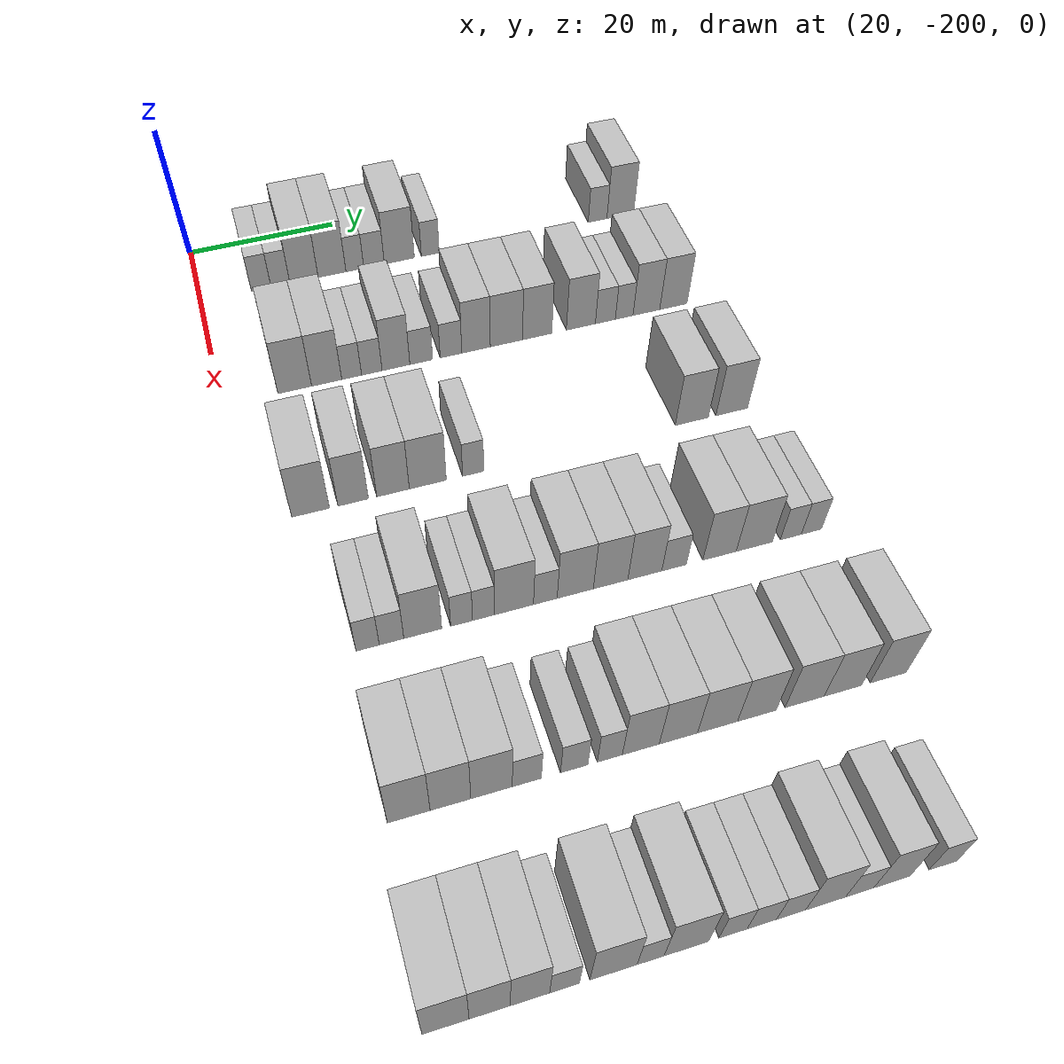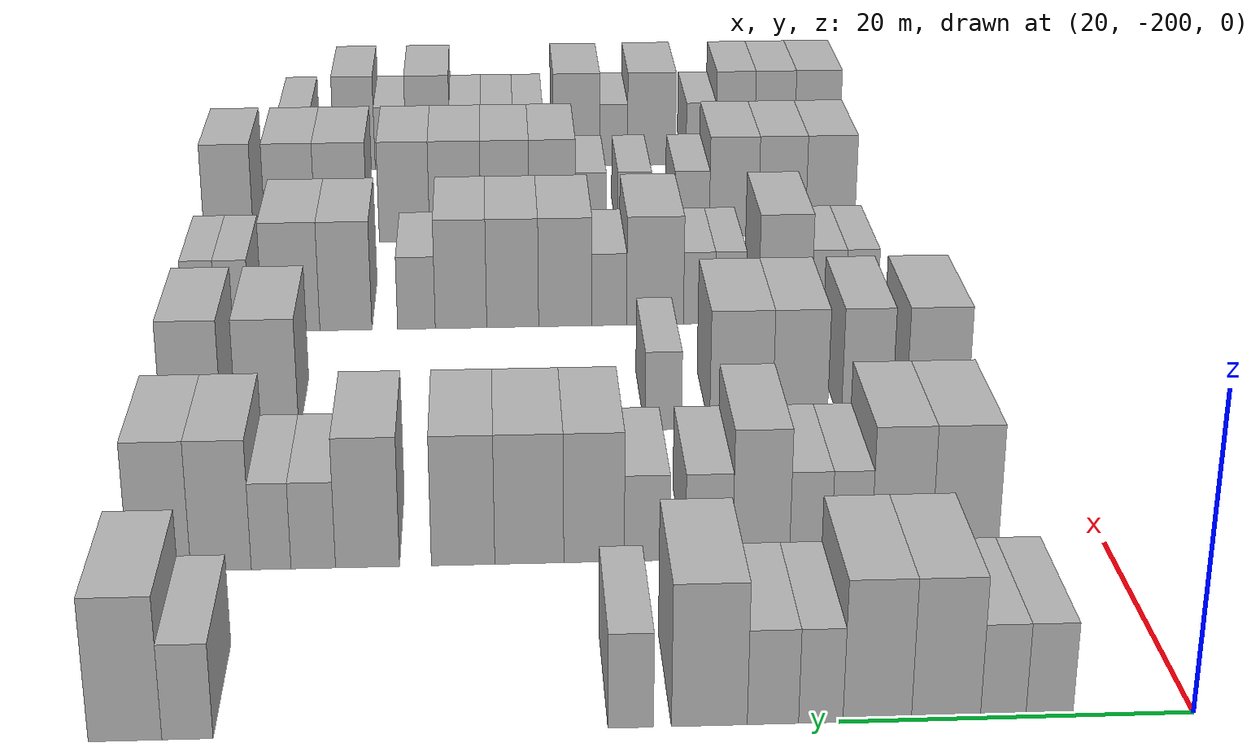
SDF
<sdf version="1.6">
 <world name="default">
  <model name="building_37">
   <static>1</static>
   <pose>25.0000 -191.7918 0 0.000000 0.000000 0.000000</pose>
   <link name="link">
    <pose>0 0 3.00 0 0 0</pose>
    <collision name="collision"><geometry><box><size>10.0000 2.6568 6.0000</size></box></geometry></collision>
    <visual name="visual">
     <cast_shadows>0</cast_shadows>
     <geometry><box><size>10.0000 2.6568 6.0000</size></box></geometry>
     <material>
      <script>
       <uri>model://HANNAS_wall/materials/scripts</uri>
       <uri>model://HANNAS_wall/materials/textures</uri>
       <name>vrc/HANNAS_wall</name>
      </script>
     </material>
    </visual>
   </link>
  </model>
  <model name="building_38">
   <static>1</static>
   <pose>25.0000 -189.1809 0 0.000000 0.000000 0.000000</pose>
   <link name="link">
    <pose>0 0 3.00 0 0 0</pose>
    <collision name="collision"><geometry><box><size>10.0000 2.5649 6.0000</size></box></geometry></collision>
    <visual name="visual">
     <cast_shadows>0</cast_shadows>
     <geometry><box><size>10.0000 2.5649 6.0000</size></box></geometry>
     <material>
      <script>
       <uri>model://HANNAS_wall/materials/scripts</uri>
       <uri>model://HANNAS_wall/materials/textures</uri>
       <name>vrc/HANNAS_wall</name>
      </script>
     </material>
    </visual>
   </link>
  </model>
  <model name="building_39">
   <static>1</static>
   <pose>25.0000 -185.9556 0 0.000000 0.000000 0.000000</pose>
   <link name="link">
    <pose>0 0 4.50 0 0 0</pose>
    <collision name="collision"><geometry><box><size>10.0000 3.8858 9.0000</size></box></geometry></collision>
    <visual name="visual">
     <cast_shadows>0</cast_shadows>
     <geometry><box><size>10.0000 3.8858 9.0000</size></box></geometry>
     <material>
      <script>
       <uri>model://HANNAS_wall/materials/scripts</uri>
       <uri>model://HANNAS_wall/materials/textures</uri>
       <name>vrc/HANNAS_wall</name>
      </script>
     </material>
    </visual>
   </link>
  </model>
  <model name="building_40">
   <static>1</static>
   <pose>25.0000 -182.0902 0 0.000000 0.000000 0.000000</pose>
   <link name="link">
    <pose>0 0 4.50 0 0 0</pose>
    <collision name="collision"><geometry><box><size>10.0000 3.8450 9.0000</size></box></geometry></collision>
    <visual name="visual">
     <cast_shadows>0</cast_shadows>
     <geometry><box><size>10.0000 3.8450 9.0000</size></box></geometry>
     <material>
      <script>
       <uri>model://HANNAS_wall/materials/scripts</uri>
       <uri>model://HANNAS_wall/materials/textures</uri>
       <name>vrc/HANNAS_wall</name>
      </script>
     </material>
    </visual>
   </link>
  </model>
  <model name="building_41">
   <static>1</static>
   <pose>25.0000 -178.9255 0 0.000000 0.000000 0.000000</pose>
   <link name="link">
    <pose>0 0 3.00 0 0 0</pose>
    <collision name="collision"><geometry><box><size>10.0000 2.4843 6.0000</size></box></geometry></collision>
    <visual name="visual">
     <cast_shadows>0</cast_shadows>
     <geometry><box><size>10.0000 2.4843 6.0000</size></box></geometry>
     <material>
      <script>
       <uri>model://HANNAS_wall/materials/scripts</uri>
       <uri>model://HANNAS_wall/materials/textures</uri>
       <name>vrc/HANNAS_wall</name>
      </script>
     </material>
    </visual>
   </link>
  </model>
  <model name="building_42">
   <static>1</static>
   <pose>25.0000 -176.2475 0 0.000000 0.000000 0.000000</pose>
   <link name="link">
    <pose>0 0 3.00 0 0 0</pose>
    <collision name="collision"><geometry><box><size>10.0000 2.8718 6.0000</size></box></geometry></collision>
    <visual name="visual">
     <cast_shadows>0</cast_shadows>
     <geometry><box><size>10.0000 2.8718 6.0000</size></box></geometry>
     <material>
      <script>
       <uri>model://HANNAS_wall/materials/scripts</uri>
       <uri>model://HANNAS_wall/materials/textures</uri>
       <name>vrc/HANNAS_wall</name>
      </script>
     </material>
    </visual>
   </link>
  </model>
  <model name="building_43">
   <static>1</static>
   <pose>25.0000 -172.6956 0 0.000000 0.000000 0.000000</pose>
   <link name="link">
    <pose>0 0 4.50 0 0 0</pose>
    <collision name="collision"><geometry><box><size>10.0000 4.2321 9.0000</size></box></geometry></collision>
    <visual name="visual">
     <cast_shadows>0</cast_shadows>
     <geometry><box><size>10.0000 4.2321 9.0000</size></box></geometry>
     <material>
      <script>
       <uri>model://HANNAS_wall/materials/scripts</uri>
       <uri>model://HANNAS_wall/materials/textures</uri>
       <name>vrc/HANNAS_wall</name>
      </script>
     </material>
    </visual>
   </link>
  </model>
  <model name="building_44">
   <static>1</static>
   <pose>25.0000 -168.3119 0 0.000000 0.000000 0.000000</pose>
   <link name="link">
    <pose>0 0 3.00 0 0 0</pose>
    <collision name="collision"><geometry><box><size>10.0000 2.5352 6.0000</size></box></geometry></collision>
    <visual name="visual">
     <cast_shadows>0</cast_shadows>
     <geometry><box><size>10.0000 2.5352 6.0000</size></box></geometry>
     <material>
      <script>
       <uri>model://HANNAS_wall/materials/scripts</uri>
       <uri>model://HANNAS_wall/materials/textures</uri>
       <name>vrc/HANNAS_wall</name>
      </script>
     </material>
    </visual>
   </link>
  </model>
  <model name="building_45">
   <static>1</static>
   <pose>25.0000 -143.8409 0 0.000000 0.000000 0.000000</pose>
   <link name="link">
    <pose>0 0 3.00 0 0 0</pose>
    <collision name="collision"><geometry><box><size>10.0000 2.8023 6.0000</size></box></geometry></collision>
    <visual name="visual">
     <cast_shadows>0</cast_shadows>
     <geometry><box><size>10.0000 2.8023 6.0000</size></box></geometry>
     <material>
      <script>
       <uri>model://HANNAS_wall/materials/scripts</uri>
       <uri>model://HANNAS_wall/materials/textures</uri>
       <name>vrc/HANNAS_wall</name>
      </script>
     </material>
    </visual>
   </link>
  </model>
  <model name="building_46">
   <static>1</static>
   <pose>25.0000 -140.4243 0 0.000000 0.000000 0.000000</pose>
   <link name="link">
    <pose>0 0 4.50 0 0 0</pose>
    <collision name="collision"><geometry><box><size>10.0000 4.0309 9.0000</size></box></geometry></collision>
    <visual name="visual">
     <cast_shadows>0</cast_shadows>
     <geometry><box><size>10.0000 4.0309 9.0000</size></box></geometry>
     <material>
      <script>
       <uri>model://HANNAS_wall/materials/scripts</uri>
       <uri>model://HANNAS_wall/materials/textures</uri>
       <name>vrc/HANNAS_wall</name>
      </script>
     </material>
    </visual>
   </link>
  </model>
  <model name="building_216">
   <static>1</static>
   <pose>44.0000 -190.7428 0 0.000000 0.000000 0.000000</pose>
   <link name="link">
    <pose>0 0 4.50 0 0 0</pose>
    <collision name="collision"><geometry><box><size>10.0000 4.2582 9.0000</size></box></geometry></collision>
    <visual name="visual">
     <cast_shadows>0</cast_shadows>
     <geometry><box><size>10.0000 4.2582 9.0000</size></box></geometry>
     <material>
      <script>
       <uri>model://HANNAS_wall/materials/scripts</uri>
       <uri>model://HANNAS_wall/materials/textures</uri>
       <name>vrc/HANNAS_wall</name>
      </script>
     </material>
    </visual>
   </link>
  </model>
  <model name="building_217">
   <static>1</static>
   <pose>44.0000 -186.6824 0 0.000000 0.000000 0.000000</pose>
   <link name="link">
    <pose>0 0 4.50 0 0 0</pose>
    <collision name="collision"><geometry><box><size>10.0000 3.8625 9.0000</size></box></geometry></collision>
    <visual name="visual">
     <cast_shadows>0</cast_shadows>
     <geometry><box><size>10.0000 3.8625 9.0000</size></box></geometry>
     <material>
      <script>
       <uri>model://HANNAS_wall/materials/scripts</uri>
       <uri>model://HANNAS_wall/materials/textures</uri>
       <name>vrc/HANNAS_wall</name>
      </script>
     </material>
    </visual>
   </link>
  </model>
  <model name="building_218">
   <static>1</static>
   <pose>44.0000 -183.4792 0 0.000000 0.000000 0.000000</pose>
   <link name="link">
    <pose>0 0 3.00 0 0 0</pose>
    <collision name="collision"><geometry><box><size>10.0000 2.5438 6.0000</size></box></geometry></collision>
    <visual name="visual">
     <cast_shadows>0</cast_shadows>
     <geometry><box><size>10.0000 2.5438 6.0000</size></box></geometry>
     <material>
      <script>
       <uri>model://HANNAS_wall/materials/scripts</uri>
       <uri>model://HANNAS_wall/materials/textures</uri>
       <name>vrc/HANNAS_wall</name>
      </script>
     </material>
    </visual>
   </link>
  </model>
  <model name="building_219">
   <static>1</static>
   <pose>44.0000 -180.8809 0 0.000000 0.000000 0.000000</pose>
   <link name="link">
    <pose>0 0 3.00 0 0 0</pose>
    <collision name="collision"><geometry><box><size>10.0000 2.6528 6.0000</size></box></geometry></collision>
    <visual name="visual">
     <cast_shadows>0</cast_shadows>
     <geometry><box><size>10.0000 2.6528 6.0000</size></box></geometry>
     <material>
      <script>
       <uri>model://HANNAS_wall/materials/scripts</uri>
       <uri>model://HANNAS_wall/materials/textures</uri>
       <name>vrc/HANNAS_wall</name>
      </script>
     </material>
    </visual>
   </link>
  </model>
  <model name="building_220">
   <static>1</static>
   <pose>44.0000 -177.7404 0 0.000000 0.000000 0.000000</pose>
   <link name="link">
    <pose>0 0 4.50 0 0 0</pose>
    <collision name="collision"><geometry><box><size>10.0000 3.6284 9.0000</size></box></geometry></collision>
    <visual name="visual">
     <cast_shadows>0</cast_shadows>
     <geometry><box><size>10.0000 3.6284 9.0000</size></box></geometry>
     <material>
      <script>
       <uri>model://HANNAS_wall/materials/scripts</uri>
       <uri>model://HANNAS_wall/materials/textures</uri>
       <name>vrc/HANNAS_wall</name>
      </script>
     </material>
    </visual>
   </link>
  </model>
  <model name="building_221">
   <static>1</static>
   <pose>44.0000 -174.4324 0 0.000000 0.000000 0.000000</pose>
   <link name="link">
    <pose>0 0 3.00 0 0 0</pose>
    <collision name="collision"><geometry><box><size>10.0000 2.9875 6.0000</size></box></geometry></collision>
    <visual name="visual">
     <cast_shadows>0</cast_shadows>
     <geometry><box><size>10.0000 2.9875 6.0000</size></box></geometry>
     <material>
      <script>
       <uri>model://HANNAS_wall/materials/scripts</uri>
       <uri>model://HANNAS_wall/materials/textures</uri>
       <name>vrc/HANNAS_wall</name>
      </script>
     </material>
    </visual>
   </link>
  </model>
  <model name="building_222">
   <static>1</static>
   <pose>44.0000 -170.5070 0 0.000000 0.000000 0.000000</pose>
   <link name="link">
    <pose>0 0 3.00 0 0 0</pose>
    <collision name="collision"><geometry><box><size>10.0000 2.8634 6.0000</size></box></geometry></collision>
    <visual name="visual">
     <cast_shadows>0</cast_shadows>
     <geometry><box><size>10.0000 2.8634 6.0000</size></box></geometry>
     <material>
      <script>
       <uri>model://HANNAS_wall/materials/scripts</uri>
       <uri>model://HANNAS_wall/materials/textures</uri>
       <name>vrc/HANNAS_wall</name>
      </script>
     </material>
    </visual>
   </link>
  </model>
  <model name="building_223">
   <static>1</static>
   <pose>44.0000 -167.1640 0 0.000000 0.000000 0.000000</pose>
   <link name="link">
    <pose>0 0 4.50 0 0 0</pose>
    <collision name="collision"><geometry><box><size>10.0000 3.8225 9.0000</size></box></geometry></collision>
    <visual name="visual">
     <cast_shadows>0</cast_shadows>
     <geometry><box><size>10.0000 3.8225 9.0000</size></box></geometry>
     <material>
      <script>
       <uri>model://HANNAS_wall/materials/scripts</uri>
       <uri>model://HANNAS_wall/materials/textures</uri>
       <name>vrc/HANNAS_wall</name>
      </script>
     </material>
    </visual>
   </link>
  </model>
  <model name="building_224">
   <static>1</static>
   <pose>44.0000 -163.0787 0 0.000000 0.000000 0.000000</pose>
   <link name="link">
    <pose>0 0 4.50 0 0 0</pose>
    <collision name="collision"><geometry><box><size>10.0000 4.3482 9.0000</size></box></geometry></collision>
    <visual name="visual">
     <cast_shadows>0</cast_shadows>
     <geometry><box><size>10.0000 4.3482 9.0000</size></box></geometry>
     <material>
      <script>
       <uri>model://HANNAS_wall/materials/scripts</uri>
       <uri>model://HANNAS_wall/materials/textures</uri>
       <name>vrc/HANNAS_wall</name>
      </script>
     </material>
    </visual>
   </link>
  </model>
  <model name="building_225">
   <static>1</static>
   <pose>44.0000 -158.9117 0 0.000000 0.000000 0.000000</pose>
   <link name="link">
    <pose>0 0 4.50 0 0 0</pose>
    <collision name="collision"><geometry><box><size>10.0000 3.9858 9.0000</size></box></geometry></collision>
    <visual name="visual">
     <cast_shadows>0</cast_shadows>
     <geometry><box><size>10.0000 3.9858 9.0000</size></box></geometry>
     <material>
      <script>
       <uri>model://HANNAS_wall/materials/scripts</uri>
       <uri>model://HANNAS_wall/materials/textures</uri>
       <name>vrc/HANNAS_wall</name>
      </script>
     </material>
    </visual>
   </link>
  </model>
  <model name="building_226">
   <static>1</static>
   <pose>44.0000 -152.9117 0 0.000000 0.000000 0.000000</pose>
   <link name="link">
    <pose>0 0 4.50 0 0 0</pose>
    <collision name="collision"><geometry><box><size>10.0000 4.0142 9.0000</size></box></geometry></collision>
    <visual name="visual">
     <cast_shadows>0</cast_shadows>
     <geometry><box><size>10.0000 4.0142 9.0000</size></box></geometry>
     <material>
      <script>
       <uri>model://HANNAS_wall/materials/scripts</uri>
       <uri>model://HANNAS_wall/materials/textures</uri>
       <name>vrc/HANNAS_wall</name>
      </script>
     </material>
    </visual>
   </link>
  </model>
  <model name="building_227">
   <static>1</static>
   <pose>44.0000 -149.5136 0 0.000000 0.000000 0.000000</pose>
   <link name="link">
    <pose>0 0 3.00 0 0 0</pose>
    <collision name="collision"><geometry><box><size>10.0000 2.7820 6.0000</size></box></geometry></collision>
    <visual name="visual">
     <cast_shadows>0</cast_shadows>
     <geometry><box><size>10.0000 2.7820 6.0000</size></box></geometry>
     <material>
      <script>
       <uri>model://HANNAS_wall/materials/scripts</uri>
       <uri>model://HANNAS_wall/materials/textures</uri>
       <name>vrc/HANNAS_wall</name>
      </script>
     </material>
    </visual>
   </link>
  </model>
  <model name="building_228">
   <static>1</static>
   <pose>44.0000 -146.8831 0 0.000000 0.000000 0.000000</pose>
   <link name="link">
    <pose>0 0 3.00 0 0 0</pose>
    <collision name="collision"><geometry><box><size>10.0000 2.4791 6.0000</size></box></geometry></collision>
    <visual name="visual">
     <cast_shadows>0</cast_shadows>
     <geometry><box><size>10.0000 2.4791 6.0000</size></box></geometry>
     <material>
      <script>
       <uri>model://HANNAS_wall/materials/scripts</uri>
       <uri>model://HANNAS_wall/materials/textures</uri>
       <name>vrc/HANNAS_wall</name>
      </script>
     </material>
    </visual>
   </link>
  </model>
  <model name="building_229">
   <static>1</static>
   <pose>44.0000 -143.7566 0 0.000000 0.000000 0.000000</pose>
   <link name="link">
    <pose>0 0 4.50 0 0 0</pose>
    <collision name="collision"><geometry><box><size>10.0000 3.7738 9.0000</size></box></geometry></collision>
    <visual name="visual">
     <cast_shadows>0</cast_shadows>
     <geometry><box><size>10.0000 3.7738 9.0000</size></box></geometry>
     <material>
      <script>
       <uri>model://HANNAS_wall/materials/scripts</uri>
       <uri>model://HANNAS_wall/materials/textures</uri>
       <name>vrc/HANNAS_wall</name>
      </script>
     </material>
    </visual>
   </link>
  </model>
  <model name="building_230">
   <static>1</static>
   <pose>44.0000 -139.9314 0 0.000000 0.000000 0.000000</pose>
   <link name="link">
    <pose>0 0 4.50 0 0 0</pose>
    <collision name="collision"><geometry><box><size>10.0000 3.8767 9.0000</size></box></geometry></collision>
    <visual name="visual">
     <cast_shadows>0</cast_shadows>
     <geometry><box><size>10.0000 3.8767 9.0000</size></box></geometry>
     <material>
      <script>
       <uri>model://HANNAS_wall/materials/scripts</uri>
       <uri>model://HANNAS_wall/materials/textures</uri>
       <name>vrc/HANNAS_wall</name>
      </script>
     </material>
    </visual>
   </link>
  </model>
  <model name="building_384">
   <static>1</static>
   <pose>63.0000 -192.4238 0 0.000000 0.000000 0.000000</pose>
   <link name="link">
    <pose>0 0 4.50 0 0 0</pose>
    <collision name="collision"><geometry><box><size>10.0000 4.4139 9.0000</size></box></geometry></collision>
    <visual name="visual">
     <cast_shadows>0</cast_shadows>
     <geometry><box><size>10.0000 4.4139 9.0000</size></box></geometry>
     <material>
      <script>
       <uri>model://HANNAS_wall/materials/scripts</uri>
       <uri>model://HANNAS_wall/materials/textures</uri>
       <name>vrc/HANNAS_wall</name>
      </script>
     </material>
    </visual>
   </link>
  </model>
  <model name="building_385">
   <static>1</static>
   <pose>63.0000 -187.4139 0 0.000000 0.000000 0.000000</pose>
   <link name="link">
    <pose>0 0 4.50 0 0 0</pose>
    <collision name="collision"><geometry><box><size>10.0000 3.6058 9.0000</size></box></geometry></collision>
    <visual name="visual">
     <cast_shadows>0</cast_shadows>
     <geometry><box><size>10.0000 3.6058 9.0000</size></box></geometry>
     <material>
      <script>
       <uri>model://HANNAS_wall/materials/scripts</uri>
       <uri>model://HANNAS_wall/materials/textures</uri>
       <name>vrc/HANNAS_wall</name>
      </script>
     </material>
    </visual>
   </link>
  </model>
  <model name="building_386">
   <static>1</static>
   <pose>63.0000 -182.6607 0 0.000000 0.000000 0.000000</pose>
   <link name="link">
    <pose>0 0 4.50 0 0 0</pose>
    <collision name="collision"><geometry><box><size>10.0000 3.9006 9.0000</size></box></geometry></collision>
    <visual name="visual">
     <cast_shadows>0</cast_shadows>
     <geometry><box><size>10.0000 3.9006 9.0000</size></box></geometry>
     <material>
      <script>
       <uri>model://HANNAS_wall/materials/scripts</uri>
       <uri>model://HANNAS_wall/materials/textures</uri>
       <name>vrc/HANNAS_wall</name>
      </script>
     </material>
    </visual>
   </link>
  </model>
  <model name="building_387">
   <static>1</static>
   <pose>63.0000 -178.4774 0 0.000000 0.000000 0.000000</pose>
   <link name="link">
    <pose>0 0 4.50 0 0 0</pose>
    <collision name="collision"><geometry><box><size>10.0000 4.4661 9.0000</size></box></geometry></collision>
    <visual name="visual">
     <cast_shadows>0</cast_shadows>
     <geometry><box><size>10.0000 4.4661 9.0000</size></box></geometry>
     <material>
      <script>
       <uri>model://HANNAS_wall/materials/scripts</uri>
       <uri>model://HANNAS_wall/materials/textures</uri>
       <name>vrc/HANNAS_wall</name>
      </script>
     </material>
    </visual>
   </link>
  </model>
  <model name="building_388">
   <static>1</static>
   <pose>63.0000 -172.9500 0 0.000000 0.000000 0.000000</pose>
   <link name="link">
    <pose>0 0 3.00 0 0 0</pose>
    <collision name="collision"><geometry><box><size>10.0000 2.5886 6.0000</size></box></geometry></collision>
    <visual name="visual">
     <cast_shadows>0</cast_shadows>
     <geometry><box><size>10.0000 2.5886 6.0000</size></box></geometry>
     <material>
      <script>
       <uri>model://HANNAS_wall/materials/scripts</uri>
       <uri>model://HANNAS_wall/materials/textures</uri>
       <name>vrc/HANNAS_wall</name>
      </script>
     </material>
    </visual>
   </link>
  </model>
  <model name="building_389">
   <static>1</static>
   <pose>63.0000 -145.1122 0 0.000000 0.000000 0.000000</pose>
   <link name="link">
    <pose>0 0 4.50 0 0 0</pose>
    <collision name="collision"><geometry><box><size>10.0000 4.3623 9.0000</size></box></geometry></collision>
    <visual name="visual">
     <cast_shadows>0</cast_shadows>
     <geometry><box><size>10.0000 4.3623 9.0000</size></box></geometry>
     <material>
      <script>
       <uri>model://HANNAS_wall/materials/scripts</uri>
       <uri>model://HANNAS_wall/materials/textures</uri>
       <name>vrc/HANNAS_wall</name>
      </script>
     </material>
    </visual>
   </link>
  </model>
  <model name="building_390">
   <static>1</static>
   <pose>63.0000 -139.8253 0 0.000000 0.000000 0.000000</pose>
   <link name="link">
    <pose>0 0 4.50 0 0 0</pose>
    <collision name="collision"><geometry><box><size>10.0000 4.2114 9.0000</size></box></geometry></collision>
    <visual name="visual">
     <cast_shadows>0</cast_shadows>
     <geometry><box><size>10.0000 4.2114 9.0000</size></box></geometry>
     <material>
      <script>
       <uri>model://HANNAS_wall/materials/scripts</uri>
       <uri>model://HANNAS_wall/materials/textures</uri>
       <name>vrc/HANNAS_wall</name>
      </script>
     </material>
    </visual>
   </link>
  </model>
  <model name="building_564">
   <static>1</static>
   <pose>82.0000 -189.9778 0 0.000000 0.000000 0.000000</pose>
   <link name="link">
    <pose>0 0 3.00 0 0 0</pose>
    <collision name="collision"><geometry><box><size>10.0000 2.5356 6.0000</size></box></geometry></collision>
    <visual name="visual">
     <cast_shadows>0</cast_shadows>
     <geometry><box><size>10.0000 2.5356 6.0000</size></box></geometry>
     <material>
      <script>
       <uri>model://HANNAS_wall/materials/scripts</uri>
       <uri>model://HANNAS_wall/materials/textures</uri>
       <name>vrc/HANNAS_wall</name>
      </script>
     </material>
    </visual>
   </link>
  </model>
  <model name="building_565">
   <static>1</static>
   <pose>82.0000 -187.3683 0 0.000000 0.000000 0.000000</pose>
   <link name="link">
    <pose>0 0 3.00 0 0 0</pose>
    <collision name="collision"><geometry><box><size>10.0000 2.6834 6.0000</size></box></geometry></collision>
    <visual name="visual">
     <cast_shadows>0</cast_shadows>
     <geometry><box><size>10.0000 2.6834 6.0000</size></box></geometry>
     <material>
      <script>
       <uri>model://HANNAS_wall/materials/scripts</uri>
       <uri>model://HANNAS_wall/materials/textures</uri>
       <name>vrc/HANNAS_wall</name>
      </script>
     </material>
    </visual>
   </link>
  </model>
  <model name="building_566">
   <static>1</static>
   <pose>82.0000 -183.9400 0 0.000000 0.000000 0.000000</pose>
   <link name="link">
    <pose>0 0 4.50 0 0 0</pose>
    <collision name="collision"><geometry><box><size>10.0000 4.1731 9.0000</size></box></geometry></collision>
    <visual name="visual">
     <cast_shadows>0</cast_shadows>
     <geometry><box><size>10.0000 4.1731 9.0000</size></box></geometry>
     <material>
      <script>
       <uri>model://HANNAS_wall/materials/scripts</uri>
       <uri>model://HANNAS_wall/materials/textures</uri>
       <name>vrc/HANNAS_wall</name>
      </script>
     </material>
    </visual>
   </link>
  </model>
  <model name="building_567">
   <static>1</static>
   <pose>82.0000 -179.6330 0 0.000000 0.000000 0.000000</pose>
   <link name="link">
    <pose>0 0 3.00 0 0 0</pose>
    <collision name="collision"><geometry><box><size>10.0000 2.4410 6.0000</size></box></geometry></collision>
    <visual name="visual">
     <cast_shadows>0</cast_shadows>
     <geometry><box><size>10.0000 2.4410 6.0000</size></box></geometry>
     <material>
      <script>
       <uri>model://HANNAS_wall/materials/scripts</uri>
       <uri>model://HANNAS_wall/materials/textures</uri>
       <name>vrc/HANNAS_wall</name>
      </script>
     </material>
    </visual>
   </link>
  </model>
  <model name="building_568">
   <static>1</static>
   <pose>82.0000 -177.1831 0 0.000000 0.000000 0.000000</pose>
   <link name="link">
    <pose>0 0 3.00 0 0 0</pose>
    <collision name="collision"><geometry><box><size>10.0000 2.4589 6.0000</size></box></geometry></collision>
    <visual name="visual">
     <cast_shadows>0</cast_shadows>
     <geometry><box><size>10.0000 2.4589 6.0000</size></box></geometry>
     <material>
      <script>
       <uri>model://HANNAS_wall/materials/scripts</uri>
       <uri>model://HANNAS_wall/materials/textures</uri>
       <name>vrc/HANNAS_wall</name>
      </script>
     </material>
    </visual>
   </link>
  </model>
  <model name="building_569">
   <static>1</static>
   <pose>82.0000 -173.7301 0 0.000000 0.000000 0.000000</pose>
   <link name="link">
    <pose>0 0 4.50 0 0 0</pose>
    <collision name="collision"><geometry><box><size>10.0000 4.4470 9.0000</size></box></geometry></collision>
    <visual name="visual">
     <cast_shadows>0</cast_shadows>
     <geometry><box><size>10.0000 4.4470 9.0000</size></box></geometry>
     <material>
      <script>
       <uri>model://HANNAS_wall/materials/scripts</uri>
       <uri>model://HANNAS_wall/materials/textures</uri>
       <name>vrc/HANNAS_wall</name>
      </script>
     </material>
    </visual>
   </link>
  </model>
  <model name="building_570">
   <static>1</static>
   <pose>82.0000 -170.1502 0 0.000000 0.000000 0.000000</pose>
   <link name="link">
    <pose>0 0 3.00 0 0 0</pose>
    <collision name="collision"><geometry><box><size>10.0000 2.7130 6.0000</size></box></geometry></collision>
    <visual name="visual">
     <cast_shadows>0</cast_shadows>
     <geometry><box><size>10.0000 2.7130 6.0000</size></box></geometry>
     <material>
      <script>
       <uri>model://HANNAS_wall/materials/scripts</uri>
       <uri>model://HANNAS_wall/materials/textures</uri>
       <name>vrc/HANNAS_wall</name>
      </script>
     </material>
    </visual>
   </link>
  </model>
  <model name="building_571">
   <static>1</static>
   <pose>82.0000 -166.6986 0 0.000000 0.000000 0.000000</pose>
   <link name="link">
    <pose>0 0 4.50 0 0 0</pose>
    <collision name="collision"><geometry><box><size>10.0000 4.1902 9.0000</size></box></geometry></collision>
    <visual name="visual">
     <cast_shadows>0</cast_shadows>
     <geometry><box><size>10.0000 4.1902 9.0000</size></box></geometry>
     <material>
      <script>
       <uri>model://HANNAS_wall/materials/scripts</uri>
       <uri>model://HANNAS_wall/materials/textures</uri>
       <name>vrc/HANNAS_wall</name>
      </script>
     </material>
    </visual>
   </link>
  </model>
  <model name="building_572">
   <static>1</static>
   <pose>82.0000 -162.5779 0 0.000000 0.000000 0.000000</pose>
   <link name="link">
    <pose>0 0 4.50 0 0 0</pose>
    <collision name="collision"><geometry><box><size>10.0000 4.0511 9.0000</size></box></geometry></collision>
    <visual name="visual">
     <cast_shadows>0</cast_shadows>
     <geometry><box><size>10.0000 4.0511 9.0000</size></box></geometry>
     <material>
      <script>
       <uri>model://HANNAS_wall/materials/scripts</uri>
       <uri>model://HANNAS_wall/materials/textures</uri>
       <name>vrc/HANNAS_wall</name>
      </script>
     </material>
    </visual>
   </link>
  </model>
  <model name="building_573">
   <static>1</static>
   <pose>82.0000 -158.5436 0 0.000000 0.000000 0.000000</pose>
   <link name="link">
    <pose>0 0 4.50 0 0 0</pose>
    <collision name="collision"><geometry><box><size>10.0000 4.0175 9.0000</size></box></geometry></collision>
    <visual name="visual">
     <cast_shadows>0</cast_shadows>
     <geometry><box><size>10.0000 4.0175 9.0000</size></box></geometry>
     <material>
      <script>
       <uri>model://HANNAS_wall/materials/scripts</uri>
       <uri>model://HANNAS_wall/materials/textures</uri>
       <name>vrc/HANNAS_wall</name>
      </script>
     </material>
    </visual>
   </link>
  </model>
  <model name="building_574">
   <static>1</static>
   <pose>82.0000 -155.0708 0 0.000000 0.000000 0.000000</pose>
   <link name="link">
    <pose>0 0 3.00 0 0 0</pose>
    <collision name="collision"><geometry><box><size>10.0000 2.9281 6.0000</size></box></geometry></collision>
    <visual name="visual">
     <cast_shadows>0</cast_shadows>
     <geometry><box><size>10.0000 2.9281 6.0000</size></box></geometry>
     <material>
      <script>
       <uri>model://HANNAS_wall/materials/scripts</uri>
       <uri>model://HANNAS_wall/materials/textures</uri>
       <name>vrc/HANNAS_wall</name>
      </script>
     </material>
    </visual>
   </link>
  </model>
  <model name="building_575">
   <static>1</static>
   <pose>82.0000 -149.5867 0 0.000000 0.000000 0.000000</pose>
   <link name="link">
    <pose>0 0 4.50 0 0 0</pose>
    <collision name="collision"><geometry><box><size>10.0000 4.0401 9.0000</size></box></geometry></collision>
    <visual name="visual">
     <cast_shadows>0</cast_shadows>
     <geometry><box><size>10.0000 4.0401 9.0000</size></box></geometry>
     <material>
      <script>
       <uri>model://HANNAS_wall/materials/scripts</uri>
       <uri>model://HANNAS_wall/materials/textures</uri>
       <name>vrc/HANNAS_wall</name>
      </script>
     </material>
    </visual>
   </link>
  </model>
  <model name="building_576">
   <static>1</static>
   <pose>82.0000 -145.3504 0 0.000000 0.000000 0.000000</pose>
   <link name="link">
    <pose>0 0 4.50 0 0 0</pose>
    <collision name="collision"><geometry><box><size>10.0000 4.4325 9.0000</size></box></geometry></collision>
    <visual name="visual">
     <cast_shadows>0</cast_shadows>
     <geometry><box><size>10.0000 4.4325 9.0000</size></box></geometry>
     <material>
      <script>
       <uri>model://HANNAS_wall/materials/scripts</uri>
       <uri>model://HANNAS_wall/materials/textures</uri>
       <name>vrc/HANNAS_wall</name>
      </script>
     </material>
    </visual>
   </link>
  </model>
  <model name="building_577">
   <static>1</static>
   <pose>82.0000 -140.8302 0 0.000000 0.000000 0.000000</pose>
   <link name="link">
    <pose>0 0 3.00 0 0 0</pose>
    <collision name="collision"><geometry><box><size>10.0000 2.6080 6.0000</size></box></geometry></collision>
    <visual name="visual">
     <cast_shadows>0</cast_shadows>
     <geometry><box><size>10.0000 2.6080 6.0000</size></box></geometry>
     <material>
      <script>
       <uri>model://HANNAS_wall/materials/scripts</uri>
       <uri>model://HANNAS_wall/materials/textures</uri>
       <name>vrc/HANNAS_wall</name>
      </script>
     </material>
    </visual>
   </link>
  </model>
  <model name="building_578">
   <static>1</static>
   <pose>82.0000 -138.2728 0 0.000000 0.000000 0.000000</pose>
   <link name="link">
    <pose>0 0 3.00 0 0 0</pose>
    <collision name="collision"><geometry><box><size>10.0000 2.5067 6.0000</size></box></geometry></collision>
    <visual name="visual">
     <cast_shadows>0</cast_shadows>
     <geometry><box><size>10.0000 2.5067 6.0000</size></box></geometry>
     <material>
      <script>
       <uri>model://HANNAS_wall/materials/scripts</uri>
       <uri>model://HANNAS_wall/materials/textures</uri>
       <name>vrc/HANNAS_wall</name>
      </script>
     </material>
    </visual>
   </link>
  </model>
  <model name="building_734">
   <static>1</static>
   <pose>101.0000 -190.1904 0 0.000000 0.000000 0.000000</pose>
   <link name="link">
    <pose>0 0 4.50 0 0 0</pose>
    <collision name="collision"><geometry><box><size>10.0000 4.2547 9.0000</size></box></geometry></collision>
    <visual name="visual">
     <cast_shadows>0</cast_shadows>
     <geometry><box><size>10.0000 4.2547 9.0000</size></box></geometry>
     <material>
      <script>
       <uri>model://HANNAS_wall/materials/scripts</uri>
       <uri>model://HANNAS_wall/materials/textures</uri>
       <name>vrc/HANNAS_wall</name>
      </script>
     </material>
    </visual>
   </link>
  </model>
  <model name="building_735">
   <static>1</static>
   <pose>101.0000 -186.0163 0 0.000000 0.000000 0.000000</pose>
   <link name="link">
    <pose>0 0 4.50 0 0 0</pose>
    <collision name="collision"><geometry><box><size>10.0000 4.0935 9.0000</size></box></geometry></collision>
    <visual name="visual">
     <cast_shadows>0</cast_shadows>
     <geometry><box><size>10.0000 4.0935 9.0000</size></box></geometry>
     <material>
      <script>
       <uri>model://HANNAS_wall/materials/scripts</uri>
       <uri>model://HANNAS_wall/materials/textures</uri>
       <name>vrc/HANNAS_wall</name>
      </script>
     </material>
    </visual>
   </link>
  </model>
  <model name="building_736">
   <static>1</static>
   <pose>101.0000 -181.8553 0 0.000000 0.000000 0.000000</pose>
   <link name="link">
    <pose>0 0 4.50 0 0 0</pose>
    <collision name="collision"><geometry><box><size>10.0000 4.2285 9.0000</size></box></geometry></collision>
    <visual name="visual">
     <cast_shadows>0</cast_shadows>
     <geometry><box><size>10.0000 4.2285 9.0000</size></box></geometry>
     <material>
      <script>
       <uri>model://HANNAS_wall/materials/scripts</uri>
       <uri>model://HANNAS_wall/materials/textures</uri>
       <name>vrc/HANNAS_wall</name>
      </script>
     </material>
    </visual>
   </link>
  </model>
  <model name="building_737">
   <static>1</static>
   <pose>101.0000 -178.2444 0 0.000000 0.000000 0.000000</pose>
   <link name="link">
    <pose>0 0 3.00 0 0 0</pose>
    <collision name="collision"><geometry><box><size>10.0000 2.9933 6.0000</size></box></geometry></collision>
    <visual name="visual">
     <cast_shadows>0</cast_shadows>
     <geometry><box><size>10.0000 2.9933 6.0000</size></box></geometry>
     <material>
      <script>
       <uri>model://HANNAS_wall/materials/scripts</uri>
       <uri>model://HANNAS_wall/materials/textures</uri>
       <name>vrc/HANNAS_wall</name>
      </script>
     </material>
    </visual>
   </link>
  </model>
  <model name="building_738">
   <static>1</static>
   <pose>101.0000 -173.3160 0 0.000000 0.000000 0.000000</pose>
   <link name="link">
    <pose>0 0 3.00 0 0 0</pose>
    <collision name="collision"><geometry><box><size>10.0000 2.8637 6.0000</size></box></geometry></collision>
    <visual name="visual">
     <cast_shadows>0</cast_shadows>
     <geometry><box><size>10.0000 2.8637 6.0000</size></box></geometry>
     <material>
      <script>
       <uri>model://HANNAS_wall/materials/scripts</uri>
       <uri>model://HANNAS_wall/materials/textures</uri>
       <name>vrc/HANNAS_wall</name>
      </script>
     </material>
    </visual>
   </link>
  </model>
  <model name="building_739">
   <static>1</static>
   <pose>101.0000 -169.5600 0 0.000000 0.000000 0.000000</pose>
   <link name="link">
    <pose>0 0 3.00 0 0 0</pose>
    <collision name="collision"><geometry><box><size>10.0000 2.6482 6.0000</size></box></geometry></collision>
    <visual name="visual">
     <cast_shadows>0</cast_shadows>
     <geometry><box><size>10.0000 2.6482 6.0000</size></box></geometry>
     <material>
      <script>
       <uri>model://HANNAS_wall/materials/scripts</uri>
       <uri>model://HANNAS_wall/materials/textures</uri>
       <name>vrc/HANNAS_wall</name>
      </script>
     </material>
    </visual>
   </link>
  </model>
  <model name="building_740">
   <static>1</static>
   <pose>101.0000 -166.2601 0 0.000000 0.000000 0.000000</pose>
   <link name="link">
    <pose>0 0 4.50 0 0 0</pose>
    <collision name="collision"><geometry><box><size>10.0000 3.9518 9.0000</size></box></geometry></collision>
    <visual name="visual">
     <cast_shadows>0</cast_shadows>
     <geometry><box><size>10.0000 3.9518 9.0000</size></box></geometry>
     <material>
      <script>
       <uri>model://HANNAS_wall/materials/scripts</uri>
       <uri>model://HANNAS_wall/materials/textures</uri>
       <name>vrc/HANNAS_wall</name>
      </script>
     </material>
    </visual>
   </link>
  </model>
  <model name="building_741">
   <static>1</static>
   <pose>101.0000 -162.2164 0 0.000000 0.000000 0.000000</pose>
   <link name="link">
    <pose>0 0 4.50 0 0 0</pose>
    <collision name="collision"><geometry><box><size>10.0000 4.1357 9.0000</size></box></geometry></collision>
    <visual name="visual">
     <cast_shadows>0</cast_shadows>
     <geometry><box><size>10.0000 4.1357 9.0000</size></box></geometry>
     <material>
      <script>
       <uri>model://HANNAS_wall/materials/scripts</uri>
       <uri>model://HANNAS_wall/materials/textures</uri>
       <name>vrc/HANNAS_wall</name>
      </script>
     </material>
    </visual>
   </link>
  </model>
  <model name="building_742">
   <static>1</static>
   <pose>101.0000 -157.9520 0 0.000000 0.000000 0.000000</pose>
   <link name="link">
    <pose>0 0 4.50 0 0 0</pose>
    <collision name="collision"><geometry><box><size>10.0000 4.3931 9.0000</size></box></geometry></collision>
    <visual name="visual">
     <cast_shadows>0</cast_shadows>
     <geometry><box><size>10.0000 4.3931 9.0000</size></box></geometry>
     <material>
      <script>
       <uri>model://HANNAS_wall/materials/scripts</uri>
       <uri>model://HANNAS_wall/materials/textures</uri>
       <name>vrc/HANNAS_wall</name>
      </script>
     </material>
    </visual>
   </link>
  </model>
  <model name="building_743">
   <static>1</static>
   <pose>101.0000 -153.6067 0 0.000000 0.000000 0.000000</pose>
   <link name="link">
    <pose>0 0 4.50 0 0 0</pose>
    <collision name="collision"><geometry><box><size>10.0000 4.2974 9.0000</size></box></geometry></collision>
    <visual name="visual">
     <cast_shadows>0</cast_shadows>
     <geometry><box><size>10.0000 4.2974 9.0000</size></box></geometry>
     <material>
      <script>
       <uri>model://HANNAS_wall/materials/scripts</uri>
       <uri>model://HANNAS_wall/materials/textures</uri>
       <name>vrc/HANNAS_wall</name>
      </script>
     </material>
    </visual>
   </link>
  </model>
  <model name="building_744">
   <static>1</static>
   <pose>101.0000 -148.2408 0 0.000000 0.000000 0.000000</pose>
   <link name="link">
    <pose>0 0 4.50 0 0 0</pose>
    <collision name="collision"><geometry><box><size>10.0000 4.4344 9.0000</size></box></geometry></collision>
    <visual name="visual">
     <cast_shadows>0</cast_shadows>
     <geometry><box><size>10.0000 4.4344 9.0000</size></box></geometry>
     <material>
      <script>
       <uri>model://HANNAS_wall/materials/scripts</uri>
       <uri>model://HANNAS_wall/materials/textures</uri>
       <name>vrc/HANNAS_wall</name>
      </script>
     </material>
    </visual>
   </link>
  </model>
  <model name="building_745">
   <static>1</static>
   <pose>101.0000 -143.9002 0 0.000000 0.000000 0.000000</pose>
   <link name="link">
    <pose>0 0 4.50 0 0 0</pose>
    <collision name="collision"><geometry><box><size>10.0000 4.2468 9.0000</size></box></geometry></collision>
    <visual name="visual">
     <cast_shadows>0</cast_shadows>
     <geometry><box><size>10.0000 4.2468 9.0000</size></box></geometry>
     <material>
      <script>
       <uri>model://HANNAS_wall/materials/scripts</uri>
       <uri>model://HANNAS_wall/materials/textures</uri>
       <name>vrc/HANNAS_wall</name>
      </script>
     </material>
    </visual>
   </link>
  </model>
  <model name="building_746">
   <static>1</static>
   <pose>101.0000 -138.6893 0 0.000000 0.000000 0.000000</pose>
   <link name="link">
    <pose>0 0 4.50 0 0 0</pose>
    <collision name="collision"><geometry><box><size>10.0000 4.1749 9.0000</size></box></geometry></collision>
    <visual name="visual">
     <cast_shadows>0</cast_shadows>
     <geometry><box><size>10.0000 4.1749 9.0000</size></box></geometry>
     <material>
      <script>
       <uri>model://HANNAS_wall/materials/scripts</uri>
       <uri>model://HANNAS_wall/materials/textures</uri>
       <name>vrc/HANNAS_wall</name>
      </script>
     </material>
    </visual>
   </link>
  </model>
  <model name="building_907">
   <static>1</static>
   <pose>120.0000 -191.6091 0 0.000000 0.000000 0.000000</pose>
   <link name="link">
    <pose>0 0 4.50 0 0 0</pose>
    <collision name="collision"><geometry><box><size>10.0000 4.2405 9.0000</size></box></geometry></collision>
    <visual name="visual">
     <cast_shadows>0</cast_shadows>
     <geometry><box><size>10.0000 4.2405 9.0000</size></box></geometry>
     <material>
      <script>
       <uri>model://HANNAS_wall/materials/scripts</uri>
       <uri>model://HANNAS_wall/materials/textures</uri>
       <name>vrc/HANNAS_wall</name>
      </script>
     </material>
    </visual>
   </link>
  </model>
  <model name="building_908">
   <static>1</static>
   <pose>120.0000 -187.6116 0 0.000000 0.000000 0.000000</pose>
   <link name="link">
    <pose>0 0 4.50 0 0 0</pose>
    <collision name="collision"><geometry><box><size>10.0000 3.7545 9.0000</size></box></geometry></collision>
    <visual name="visual">
     <cast_shadows>0</cast_shadows>
     <geometry><box><size>10.0000 3.7545 9.0000</size></box></geometry>
     <material>
      <script>
       <uri>model://HANNAS_wall/materials/scripts</uri>
       <uri>model://HANNAS_wall/materials/textures</uri>
       <name>vrc/HANNAS_wall</name>
      </script>
     </material>
    </visual>
   </link>
  </model>
  <model name="building_909">
   <static>1</static>
   <pose>120.0000 -183.9179 0 0.000000 0.000000 0.000000</pose>
   <link name="link">
    <pose>0 0 4.50 0 0 0</pose>
    <collision name="collision"><geometry><box><size>10.0000 3.6327 9.0000</size></box></geometry></collision>
    <visual name="visual">
     <cast_shadows>0</cast_shadows>
     <geometry><box><size>10.0000 3.6327 9.0000</size></box></geometry>
     <material>
      <script>
       <uri>model://HANNAS_wall/materials/scripts</uri>
       <uri>model://HANNAS_wall/materials/textures</uri>
       <name>vrc/HANNAS_wall</name>
      </script>
     </material>
    </visual>
   </link>
  </model>
  <model name="building_910">
   <static>1</static>
   <pose>120.0000 -180.7186 0 0.000000 0.000000 0.000000</pose>
   <link name="link">
    <pose>0 0 3.00 0 0 0</pose>
    <collision name="collision"><geometry><box><size>10.0000 2.7660 6.0000</size></box></geometry></collision>
    <visual name="visual">
     <cast_shadows>0</cast_shadows>
     <geometry><box><size>10.0000 2.7660 6.0000</size></box></geometry>
     <material>
      <script>
       <uri>model://HANNAS_wall/materials/scripts</uri>
       <uri>model://HANNAS_wall/materials/textures</uri>
       <name>vrc/HANNAS_wall</name>
      </script>
     </material>
    </visual>
   </link>
  </model>
  <model name="building_911">
   <static>1</static>
   <pose>120.0000 -176.0983 0 0.000000 0.000000 0.000000</pose>
   <link name="link">
    <pose>0 0 4.50 0 0 0</pose>
    <collision name="collision"><geometry><box><size>10.0000 4.4746 9.0000</size></box></geometry></collision>
    <visual name="visual">
     <cast_shadows>0</cast_shadows>
     <geometry><box><size>10.0000 4.4746 9.0000</size></box></geometry>
     <material>
      <script>
       <uri>model://HANNAS_wall/materials/scripts</uri>
       <uri>model://HANNAS_wall/materials/textures</uri>
       <name>vrc/HANNAS_wall</name>
      </script>
     </material>
    </visual>
   </link>
  </model>
  <model name="building_912">
   <static>1</static>
   <pose>120.0000 -172.5610 0 0.000000 0.000000 0.000000</pose>
   <link name="link">
    <pose>0 0 3.00 0 0 0</pose>
    <collision name="collision"><geometry><box><size>10.0000 2.6001 6.0000</size></box></geometry></collision>
    <visual name="visual">
     <cast_shadows>0</cast_shadows>
     <geometry><box><size>10.0000 2.6001 6.0000</size></box></geometry>
     <material>
      <script>
       <uri>model://HANNAS_wall/materials/scripts</uri>
       <uri>model://HANNAS_wall/materials/textures</uri>
       <name>vrc/HANNAS_wall</name>
      </script>
     </material>
    </visual>
   </link>
  </model>
  <model name="building_913">
   <static>1</static>
   <pose>120.0000 -169.0968 0 0.000000 0.000000 0.000000</pose>
   <link name="link">
    <pose>0 0 4.50 0 0 0</pose>
    <collision name="collision"><geometry><box><size>10.0000 4.3282 9.0000</size></box></geometry></collision>
    <visual name="visual">
     <cast_shadows>0</cast_shadows>
     <geometry><box><size>10.0000 4.3282 9.0000</size></box></geometry>
     <material>
      <script>
       <uri>model://HANNAS_wall/materials/scripts</uri>
       <uri>model://HANNAS_wall/materials/textures</uri>
       <name>vrc/HANNAS_wall</name>
      </script>
     </material>
    </visual>
   </link>
  </model>
  <model name="building_914">
   <static>1</static>
   <pose>120.0000 -164.5464 0 0.000000 0.000000 0.000000</pose>
   <link name="link">
    <pose>0 0 3.00 0 0 0</pose>
    <collision name="collision"><geometry><box><size>10.0000 2.7727 6.0000</size></box></geometry></collision>
    <visual name="visual">
     <cast_shadows>0</cast_shadows>
     <geometry><box><size>10.0000 2.7727 6.0000</size></box></geometry>
     <material>
      <script>
       <uri>model://HANNAS_wall/materials/scripts</uri>
       <uri>model://HANNAS_wall/materials/textures</uri>
       <name>vrc/HANNAS_wall</name>
      </script>
     </material>
    </visual>
   </link>
  </model>
  <model name="building_915">
   <static>1</static>
   <pose>120.0000 -161.6977 0 0.000000 0.000000 0.000000</pose>
   <link name="link">
    <pose>0 0 3.00 0 0 0</pose>
    <collision name="collision"><geometry><box><size>10.0000 2.9246 6.0000</size></box></geometry></collision>
    <visual name="visual">
     <cast_shadows>0</cast_shadows>
     <geometry><box><size>10.0000 2.9246 6.0000</size></box></geometry>
     <material>
      <script>
       <uri>model://HANNAS_wall/materials/scripts</uri>
       <uri>model://HANNAS_wall/materials/textures</uri>
       <name>vrc/HANNAS_wall</name>
      </script>
     </material>
    </visual>
   </link>
  </model>
  <model name="building_916">
   <static>1</static>
   <pose>120.0000 -158.7695 0 0.000000 0.000000 0.000000</pose>
   <link name="link">
    <pose>0 0 3.00 0 0 0</pose>
    <collision name="collision"><geometry><box><size>10.0000 2.9319 6.0000</size></box></geometry></collision>
    <visual name="visual">
     <cast_shadows>0</cast_shadows>
     <geometry><box><size>10.0000 2.9319 6.0000</size></box></geometry>
     <material>
      <script>
       <uri>model://HANNAS_wall/materials/scripts</uri>
       <uri>model://HANNAS_wall/materials/textures</uri>
       <name>vrc/HANNAS_wall</name>
      </script>
     </material>
    </visual>
   </link>
  </model>
  <model name="building_917">
   <static>1</static>
   <pose>120.0000 -155.2678 0 0.000000 0.000000 0.000000</pose>
   <link name="link">
    <pose>0 0 4.50 0 0 0</pose>
    <collision name="collision"><geometry><box><size>10.0000 4.0715 9.0000</size></box></geometry></collision>
    <visual name="visual">
     <cast_shadows>0</cast_shadows>
     <geometry><box><size>10.0000 4.0715 9.0000</size></box></geometry>
     <material>
      <script>
       <uri>model://HANNAS_wall/materials/scripts</uri>
       <uri>model://HANNAS_wall/materials/textures</uri>
       <name>vrc/HANNAS_wall</name>
      </script>
     </material>
    </visual>
   </link>
  </model>
  <model name="building_918">
   <static>1</static>
   <pose>120.0000 -151.7830 0 0.000000 0.000000 0.000000</pose>
   <link name="link">
    <pose>0 0 3.00 0 0 0</pose>
    <collision name="collision"><geometry><box><size>10.0000 2.8981 6.0000</size></box></geometry></collision>
    <visual name="visual">
     <cast_shadows>0</cast_shadows>
     <geometry><box><size>10.0000 2.8981 6.0000</size></box></geometry>
     <material>
      <script>
       <uri>model://HANNAS_wall/materials/scripts</uri>
       <uri>model://HANNAS_wall/materials/textures</uri>
       <name>vrc/HANNAS_wall</name>
      </script>
     </material>
    </visual>
   </link>
  </model>
  <model name="building_919">
   <static>1</static>
   <pose>120.0000 -148.4513 0 0.000000 0.000000 0.000000</pose>
   <link name="link">
    <pose>0 0 4.50 0 0 0</pose>
    <collision name="collision"><geometry><box><size>10.0000 3.7654 9.0000</size></box></geometry></collision>
    <visual name="visual">
     <cast_shadows>0</cast_shadows>
     <geometry><box><size>10.0000 3.7654 9.0000</size></box></geometry>
     <material>
      <script>
       <uri>model://HANNAS_wall/materials/scripts</uri>
       <uri>model://HANNAS_wall/materials/textures</uri>
       <name>vrc/HANNAS_wall</name>
      </script>
     </material>
    </visual>
   </link>
  </model>
  <model name="building_920">
   <static>1</static>
   <pose>120.0000 -143.0991 0 0.000000 0.000000 0.000000</pose>
   <link name="link">
    <pose>0 0 3.00 0 0 0</pose>
    <collision name="collision"><geometry><box><size>10.0000 2.9389 6.0000</size></box></geometry></collision>
    <visual name="visual">
     <cast_shadows>0</cast_shadows>
     <geometry><box><size>10.0000 2.9389 6.0000</size></box></geometry>
     <material>
      <script>
       <uri>model://HANNAS_wall/materials/scripts</uri>
       <uri>model://HANNAS_wall/materials/textures</uri>
       <name>vrc/HANNAS_wall</name>
      </script>
     </material>
    </visual>
   </link>
  </model>
 </world>
</sdf>
